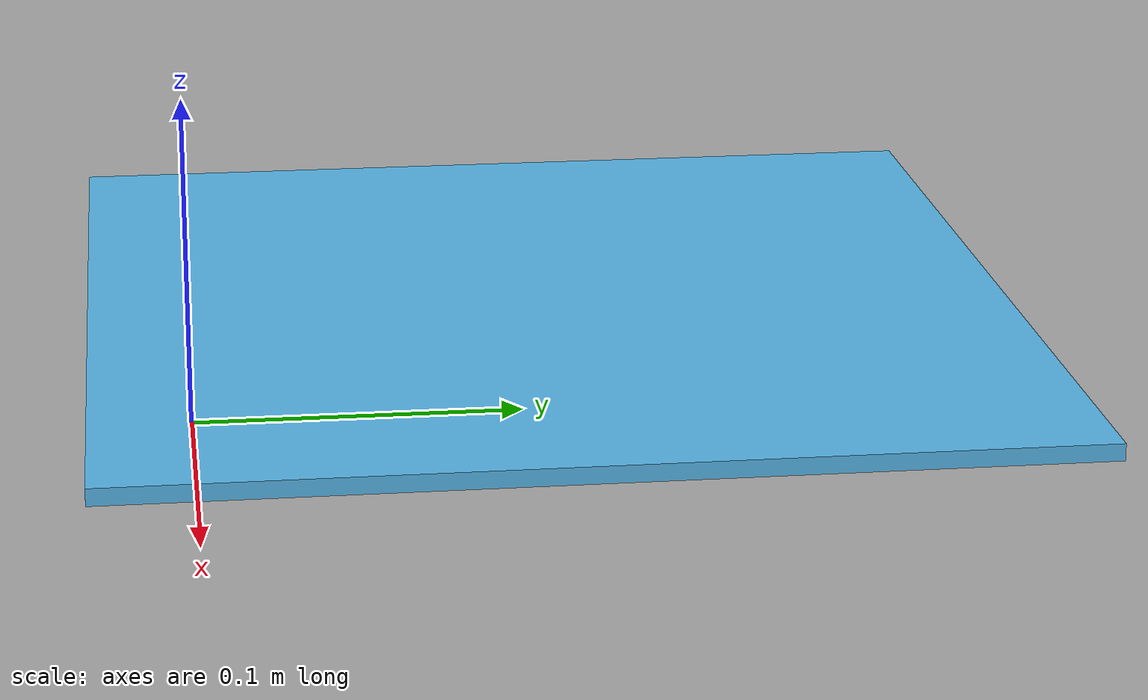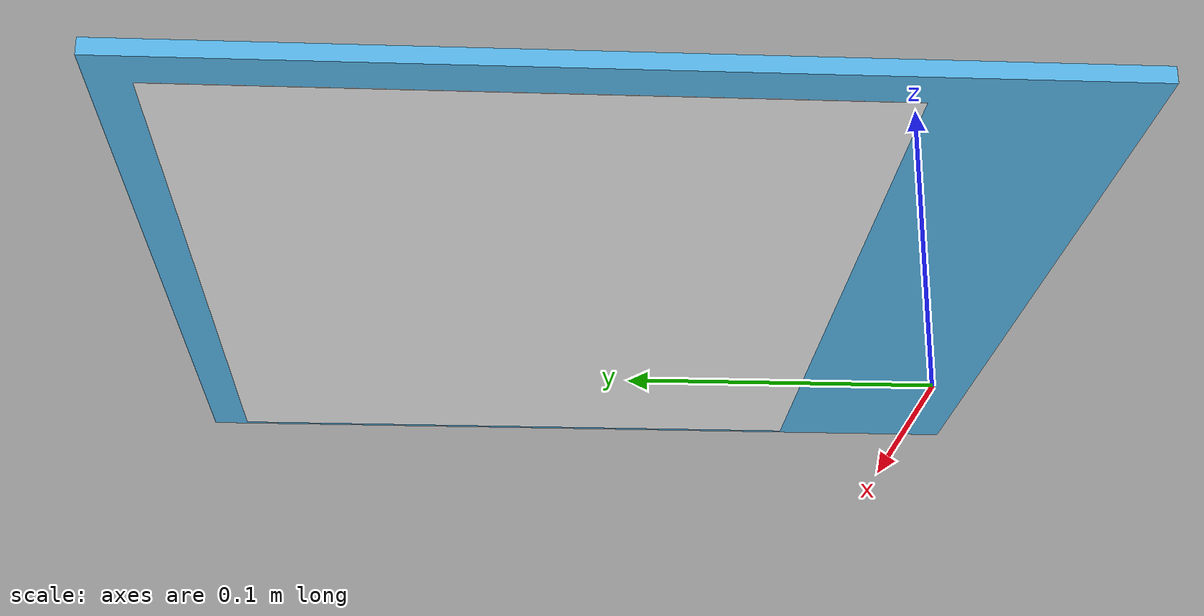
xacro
<robot name="camera_calibrator">

  <gazebo reference="image_calibration_link">
     <material>calibration</material>
  </gazebo>

  <link name="impact_camera_calibration_base_link"/>

  <joint name="impact_camera_calibration_base_link_joint" type="fixed">
        <parent link="impact_camera_calibration_base_link"/>
        <child link="impact_camera_calibration_link"/>
        <origin xyz="-0.02 0.1097 0.0272" rpy="0 0 0"/>
    </joint>

    <link name="impact_camera_calibration_link">
    <inertial>
      <mass value="0.01"/>
      <origin xyz="0.0 0 0" rpy=" 0 0 0"/>
      <inertia
          ixx="0" ixy="0" ixz="0"
          iyy="0" iyz="0"
          izz="0"
      />
    </inertial>
        <visual>
            <geometry>
                <box size="0.2985 0.27940 0.005"/>
            </geometry>
        </visual>
        <collision>
            <geometry>
                <box size="0.2985 0.27940 0.005"/>
            </geometry>
        </collision>
    </link>
      <joint name="image_link_joint" type="fixed">
        <parent link="impact_camera_calibration_link"/>
        <child link="image_calibration_link"/>
        <origin xyz="0 0.025 -0.005" rpy="0 0 0"/>
    </joint>
    <link name="image_calibration_link">
    <origin  xyz="0 0 0"  rpy="0 0 0" />
        <visual>
            <geometry>
                <box size="0.2794 0.2032 0.0001"/>
            </geometry>
            <material name="White" />
        </visual>
        <collision>
            <geometry>
                <box size="0.2794 0.2159 0.0001"/>
            </geometry>
        </collision>
    </link>

</robot>
